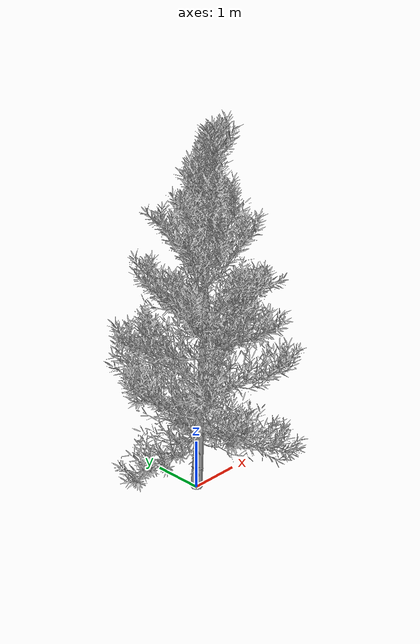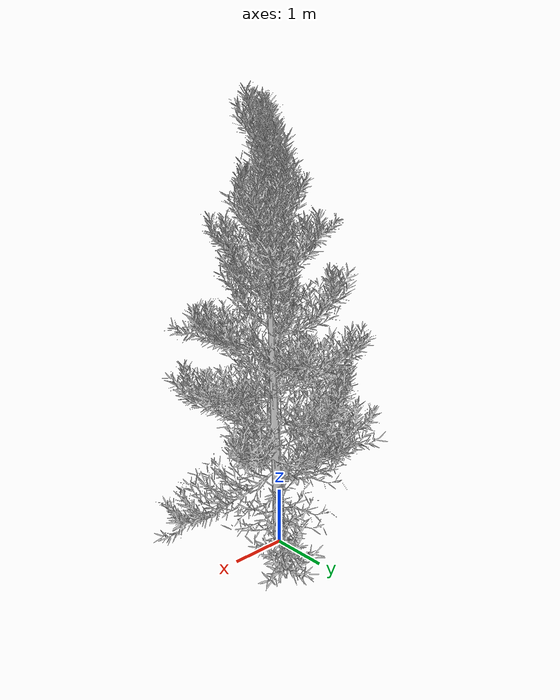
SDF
<?xml version="1.0" ?>
<sdf version="1.5">
  <model name="Forest Pine">
    <static>true</static>
    <link name="link">
      <pose>0 0 0 1.57 0 0</pose>
      <collision name="collision">
        <geometry>
          <mesh>
            <uri>model://Pine/meshes/Pine.obj</uri>
          </mesh>
        </geometry>
      </collision>
      <visual name="visual">
        <geometry>
          <mesh>
            <uri>model://Pine/meshes/Pine.obj</uri>
          </mesh>
        </geometry>
      </visual>
    </link>
  </model>
</sdf>
